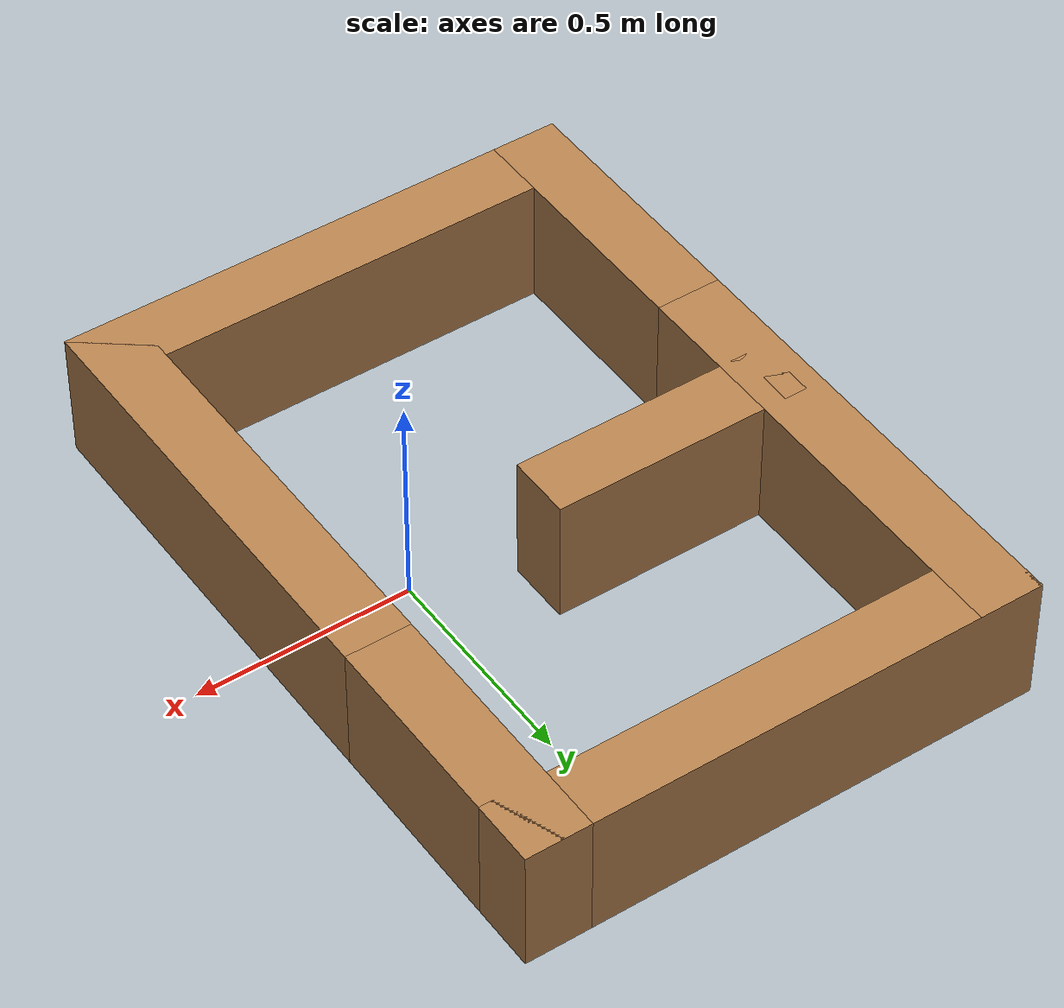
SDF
<?xml version='1.0'?>
<sdf version='1.7'>
  <model name='test2.world'>
    <pose>-0.255 0.09 0 0 -0 0</pose>
    <link name='Wall_16'>
      <collision name='Wall_16_Collision'>
        <geometry>
          <box>
            <size>1.2 0.15 0.3</size>
          </box>
        </geometry>
        <pose>0 0 0.15 0 -0 0</pose>
      </collision>
      <visual name='Wall_16_Visual'>
        <pose>0 0 0.15 0 -0 0</pose>
        <geometry>
          <box>
            <size>1.2 0.15 0.3</size>
          </box>
        </geometry>
        <material>
          <script>
            <uri>file://media/materials/scripts/gazebo.material</uri>
            <name>Gazebo/Wood</name>
          </script>
          <ambient>0.996078 0.47451 0.0196078 1</ambient>
        </material>
        <meta>
          <layer>0</layer>
        </meta>
      </visual>
      <pose>0.525 -0.225 0 0 -0 1.5708</pose>
    </link>
    <link name='Wall_18'>
      <collision name='Wall_18_Collision'>
        <geometry>
          <box>
            <size>0.6 0.15 0.3</size>
          </box>
        </geometry>
        <pose>0 0 0.15 0 -0 0</pose>
      </collision>
      <visual name='Wall_18_Visual'>
        <pose>0 0 0.15 0 -0 0</pose>
        <geometry>
          <box>
            <size>0.6 0.15 0.3</size>
          </box>
        </geometry>
        <material>
          <script>
            <uri>file://media/materials/scripts/gazebo.material</uri>
            <name>Gazebo/Wood</name>
          </script>
          <ambient>0.996078 0.47451 0.0196078 1</ambient>
        </material>
        <meta>
          <layer>0</layer>
        </meta>
      </visual>
      <pose>0.525 0.525 0 0 -0 1.5708</pose>
    </link>
    <link name='Wall_2'>
      <collision name='Wall_2_Collision'>
        <geometry>
          <box>
            <size>1.2 0.15 0.3</size>
          </box>
        </geometry>
        <pose>0 0 0.15 0 -0 0</pose>
      </collision>
      <visual name='Wall_2_Visual'>
        <pose>0 0 0.15 0 -0 0</pose>
        <geometry>
          <box>
            <size>1.2 0.15 0.3</size>
          </box>
        </geometry>
        <material>
          <script>
            <uri>file://media/materials/scripts/gazebo.material</uri>
            <name>Gazebo/Wood</name>
          </script>
          <ambient>0.996078 0.47451 0.0196078 1</ambient>
        </material>
        <meta>
          <layer>0</layer>
        </meta>
      </visual>
      <pose>0 -0.75 0 0 -0 0</pose>
    </link>
    <link name='Wall_20'>
      <collision name='Wall_20_Collision'>
        <geometry>
          <box>
            <size>1.2 0.15 0.3</size>
          </box>
        </geometry>
        <pose>0 0 0.15 0 -0 0</pose>
      </collision>
      <visual name='Wall_20_Visual'>
        <pose>0 0 0.15 0 -0 0</pose>
        <geometry>
          <box>
            <size>1.2 0.15 0.3</size>
          </box>
        </geometry>
        <material>
          <script>
            <uri>file://media/materials/scripts/gazebo.material</uri>
            <name>Gazebo/Wood</name>
          </script>
          <ambient>0.996078 0.47451 0.0196078 1</ambient>
        </material>
        <meta>
          <layer>0</layer>
        </meta>
      </visual>
      <pose>0 0.75 0 0 -0 3.14159</pose>
    </link>
    <link name='Wall_22'>
      <collision name='Wall_22_Collision'>
        <geometry>
          <box>
            <size>1.2 0.15 0.3</size>
          </box>
        </geometry>
        <pose>0 0 0.15 0 -0 0</pose>
      </collision>
      <visual name='Wall_22_Visual'>
        <pose>0 0 0.15 0 -0 0</pose>
        <geometry>
          <box>
            <size>1.2 0.15 0.3</size>
          </box>
        </geometry>
        <material>
          <script>
            <uri>file://media/materials/scripts/gazebo.material</uri>
            <name>Gazebo/Wood</name>
          </script>
          <ambient>0.996078 0.47451 0.0196078 1</ambient>
        </material>
        <meta>
          <layer>0</layer>
        </meta>
      </visual>
      <pose>-0.525 0.225 0 0 -0 -1.5708</pose>
    </link>
    <link name='Wall_24'>
      <collision name='Wall_24_Collision'>
        <geometry>
          <box>
            <size>0.6 0.15 0.3</size>
          </box>
        </geometry>
        <pose>0 0 0.15 0 -0 0</pose>
      </collision>
      <visual name='Wall_24_Visual'>
        <pose>0 0 0.15 0 -0 0</pose>
        <geometry>
          <box>
            <size>0.6 0.15 0.3</size>
          </box>
        </geometry>
        <material>
          <script>
            <uri>file://media/materials/scripts/gazebo.material</uri>
            <name>Gazebo/Wood</name>
          </script>
          <ambient>0.996078 0.47451 0.0196078 1</ambient>
        </material>
        <meta>
          <layer>0</layer>
        </meta>
      </visual>
      <pose>-0.525 -0.525 0 0 -0 -1.5708</pose>
    </link>
    <link name='Wall_26'>
      <collision name='Wall_26_Collision'>
        <geometry>
          <box>
            <size>0.6 0.15 0.3</size>
          </box>
        </geometry>
        <pose>0 0 0.15 0 -0 0</pose>
      </collision>
      <visual name='Wall_26_Visual'>
        <pose>0 0 0.15 0 -0 0</pose>
        <geometry>
          <box>
            <size>0.6 0.15 0.3</size>
          </box>
        </geometry>
        <material>
          <script>
            <uri>file://media/materials/scripts/gazebo.material</uri>
            <name>Gazebo/Wood</name>
          </script>
          <ambient>0.996078 0.47451 0.0196078 1</ambient>
        </material>
        <meta>
          <layer>0</layer>
        </meta>
      </visual>
      <pose>-0.25525 0.060857 0 0 -0 0</pose>
    </link>
    <static>1</static>
  </model>
</sdf>
